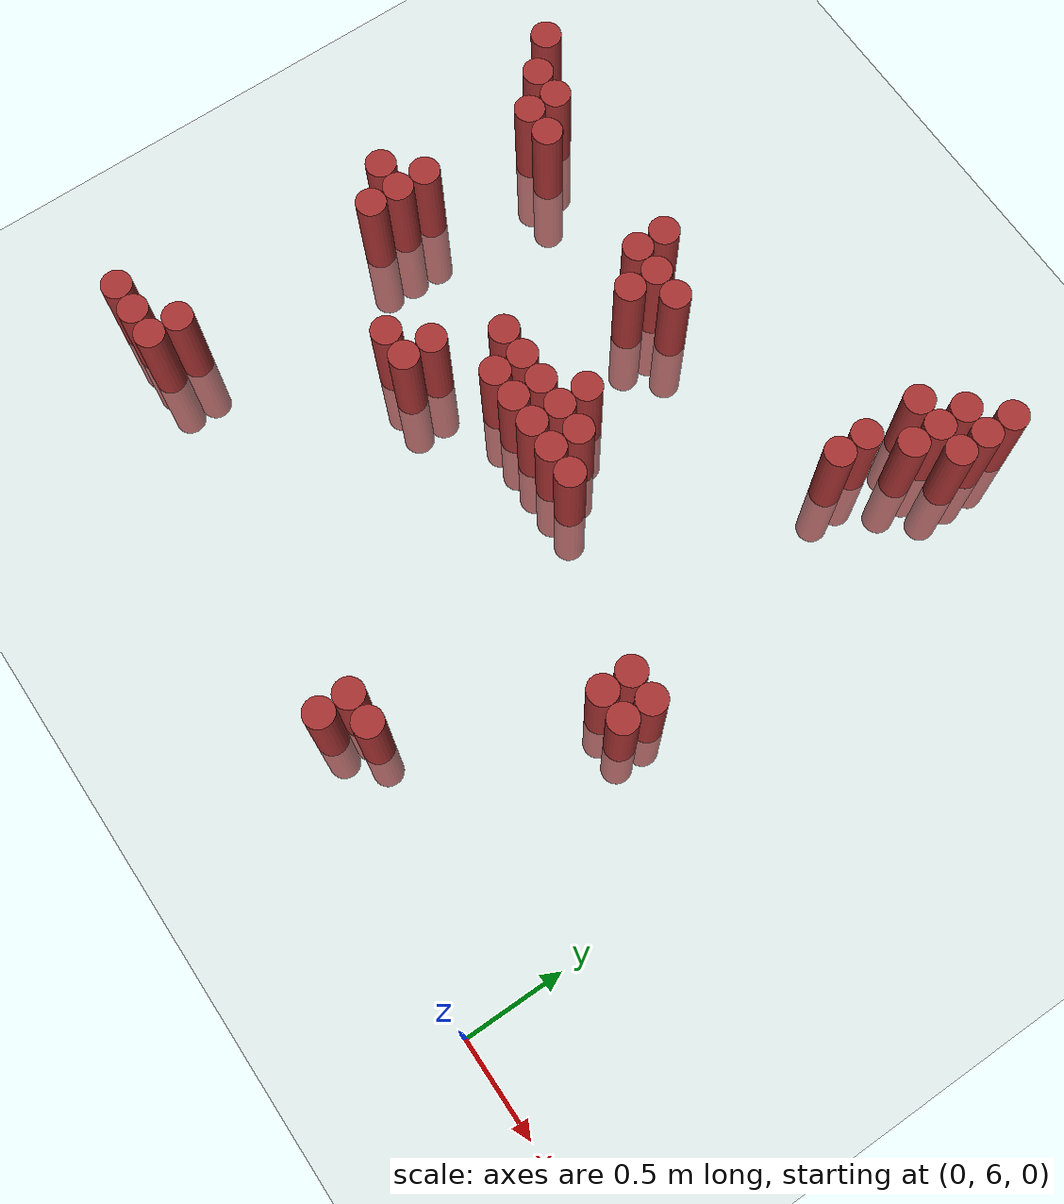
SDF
<sdf version="1.6">
 <world name="default">
  <model name="ground_plane">
   <static>1</static>
   <link name="link">
    <collision name="collision">
     <geometry><plane><normal>0 0 1</normal><size>100 100</size></plane></geometry>
     <surface><friction><ode><mu>100</mu><mu2>50</mu2></ode></friction></surface>
    </collision>
    <visual name="visual">
     <cast_shadows>0</cast_shadows>
     <geometry><plane><normal>0 0 1</normal><size>100 100</size></plane></geometry>
     <material>
      <script><uri>file://media/materials/scripts/gazebo.material</uri><name>Gazebo/Grey</name></script>
     </material>
    </visual>
   </link>
  </model>
  <model name="unit_cylinder_155">
   <static>1</static>
   <pose>-3.675000 6.525000 0.000000 0.000000 0.000000 0.000000</pose>
   <link name="link">
    <inertial>
     <mass>1</mass>
     <inertia><ixx>0.145833</ixx><ixy>0</ixy><ixz>0</ixz><iyy>0.145833</iyy><iyz>0</iyz><izz>0.125</izz></inertia>
    </inertial>
    <collision name="collision">
     <geometry><cylinder><radius>0.075000</radius><length>1</length></cylinder></geometry>
    </collision>
    <visual name="visual">
     <geometry><cylinder><radius>0.075000</radius><length>1</length></cylinder></geometry>
     <material>
      <ambient>0.648000 0.192000 0.192000 1</ambient>
      <diffuse>0.648000 0.192000 0.192000 1</diffuse>
     </material>
     <material>
      <script><name>Gazebo/Grey</name><uri>file://media/materials/scripts/gazebo.material</uri></script>
     </material>
    </visual>
   </link>
  </model>
  <model name="unit_cylinder_156">
   <static>1</static>
   <pose>-3.675000 8.925000 0.000000 0.000000 0.000000 0.000000</pose>
   <link name="link">
    <inertial>
     <mass>1</mass>
     <inertia><ixx>0.145833</ixx><ixy>0</ixy><ixz>0</ixz><iyy>0.145833</iyy><iyz>0</iyz><izz>0.125</izz></inertia>
    </inertial>
    <collision name="collision">
     <geometry><cylinder><radius>0.075000</radius><length>1</length></cylinder></geometry>
    </collision>
    <visual name="visual">
     <geometry><cylinder><radius>0.075000</radius><length>1</length></cylinder></geometry>
     <material>
      <ambient>0.648000 0.192000 0.192000 1</ambient>
      <diffuse>0.648000 0.192000 0.192000 1</diffuse>
     </material>
     <material>
      <script><name>Gazebo/Grey</name><uri>file://media/materials/scripts/gazebo.material</uri></script>
     </material>
    </visual>
   </link>
  </model>
  <model name="unit_cylinder_159">
   <static>1</static>
   <pose>-3.525000 6.525000 0.000000 0.000000 0.000000 0.000000</pose>
   <link name="link">
    <inertial>
     <mass>1</mass>
     <inertia><ixx>0.145833</ixx><ixy>0</ixy><ixz>0</ixz><iyy>0.145833</iyy><iyz>0</iyz><izz>0.125</izz></inertia>
    </inertial>
    <collision name="collision">
     <geometry><cylinder><radius>0.075000</radius><length>1</length></cylinder></geometry>
    </collision>
    <visual name="visual">
     <geometry><cylinder><radius>0.075000</radius><length>1</length></cylinder></geometry>
     <material>
      <ambient>0.648000 0.192000 0.192000 1</ambient>
      <diffuse>0.648000 0.192000 0.192000 1</diffuse>
     </material>
     <material>
      <script><name>Gazebo/Grey</name><uri>file://media/materials/scripts/gazebo.material</uri></script>
     </material>
    </visual>
   </link>
  </model>
  <model name="unit_cylinder_160">
   <static>1</static>
   <pose>-3.525000 7.875000 0.000000 0.000000 0.000000 0.000000</pose>
   <link name="link">
    <inertial>
     <mass>1</mass>
     <inertia><ixx>0.145833</ixx><ixy>0</ixy><ixz>0</ixz><iyy>0.145833</iyy><iyz>0</iyz><izz>0.125</izz></inertia>
    </inertial>
    <collision name="collision">
     <geometry><cylinder><radius>0.075000</radius><length>1</length></cylinder></geometry>
    </collision>
    <visual name="visual">
     <geometry><cylinder><radius>0.075000</radius><length>1</length></cylinder></geometry>
     <material>
      <ambient>0.648000 0.192000 0.192000 1</ambient>
      <diffuse>0.648000 0.192000 0.192000 1</diffuse>
     </material>
     <material>
      <script><name>Gazebo/Grey</name><uri>file://media/materials/scripts/gazebo.material</uri></script>
     </material>
    </visual>
   </link>
  </model>
  <model name="unit_cylinder_161">
   <static>1</static>
   <pose>-3.525000 8.775000 0.000000 0.000000 0.000000 0.000000</pose>
   <link name="link">
    <inertial>
     <mass>1</mass>
     <inertia><ixx>0.145833</ixx><ixy>0</ixy><ixz>0</ixz><iyy>0.145833</iyy><iyz>0</iyz><izz>0.125</izz></inertia>
    </inertial>
    <collision name="collision">
     <geometry><cylinder><radius>0.075000</radius><length>1</length></cylinder></geometry>
    </collision>
    <visual name="visual">
     <geometry><cylinder><radius>0.075000</radius><length>1</length></cylinder></geometry>
     <material>
      <ambient>0.648000 0.192000 0.192000 1</ambient>
      <diffuse>0.648000 0.192000 0.192000 1</diffuse>
     </material>
     <material>
      <script><name>Gazebo/Grey</name><uri>file://media/materials/scripts/gazebo.material</uri></script>
     </material>
    </visual>
   </link>
  </model>
  <model name="unit_cylinder_165">
   <static>1</static>
   <pose>-3.375000 6.525000 0.000000 0.000000 0.000000 0.000000</pose>
   <link name="link">
    <inertial>
     <mass>1</mass>
     <inertia><ixx>0.145833</ixx><ixy>0</ixy><ixz>0</ixz><iyy>0.145833</iyy><iyz>0</iyz><izz>0.125</izz></inertia>
    </inertial>
    <collision name="collision">
     <geometry><cylinder><radius>0.075000</radius><length>1</length></cylinder></geometry>
    </collision>
    <visual name="visual">
     <geometry><cylinder><radius>0.075000</radius><length>1</length></cylinder></geometry>
     <material>
      <ambient>0.648000 0.192000 0.192000 1</ambient>
      <diffuse>0.648000 0.192000 0.192000 1</diffuse>
     </material>
     <material>
      <script><name>Gazebo/Grey</name><uri>file://media/materials/scripts/gazebo.material</uri></script>
     </material>
    </visual>
   </link>
  </model>
  <model name="unit_cylinder_166">
   <static>1</static>
   <pose>-3.375000 6.675000 0.000000 0.000000 0.000000 0.000000</pose>
   <link name="link">
    <inertial>
     <mass>1</mass>
     <inertia><ixx>0.145833</ixx><ixy>0</ixy><ixz>0</ixz><iyy>0.145833</iyy><iyz>0</iyz><izz>0.125</izz></inertia>
    </inertial>
    <collision name="collision">
     <geometry><cylinder><radius>0.075000</radius><length>1</length></cylinder></geometry>
    </collision>
    <visual name="visual">
     <geometry><cylinder><radius>0.075000</radius><length>1</length></cylinder></geometry>
     <material>
      <ambient>0.648000 0.192000 0.192000 1</ambient>
      <diffuse>0.648000 0.192000 0.192000 1</diffuse>
     </material>
     <material>
      <script><name>Gazebo/Grey</name><uri>file://media/materials/scripts/gazebo.material</uri></script>
     </material>
    </visual>
   </link>
  </model>
  <model name="unit_cylinder_167">
   <static>1</static>
   <pose>-3.375000 7.725000 0.000000 0.000000 0.000000 0.000000</pose>
   <link name="link">
    <inertial>
     <mass>1</mass>
     <inertia><ixx>0.145833</ixx><ixy>0</ixy><ixz>0</ixz><iyy>0.145833</iyy><iyz>0</iyz><izz>0.125</izz></inertia>
    </inertial>
    <collision name="collision">
     <geometry><cylinder><radius>0.075000</radius><length>1</length></cylinder></geometry>
    </collision>
    <visual name="visual">
     <geometry><cylinder><radius>0.075000</radius><length>1</length></cylinder></geometry>
     <material>
      <ambient>0.648000 0.192000 0.192000 1</ambient>
      <diffuse>0.648000 0.192000 0.192000 1</diffuse>
     </material>
     <material>
      <script><name>Gazebo/Grey</name><uri>file://media/materials/scripts/gazebo.material</uri></script>
     </material>
    </visual>
   </link>
  </model>
  <model name="unit_cylinder_168">
   <static>1</static>
   <pose>-3.375000 7.875000 0.000000 0.000000 0.000000 0.000000</pose>
   <link name="link">
    <inertial>
     <mass>1</mass>
     <inertia><ixx>0.145833</ixx><ixy>0</ixy><ixz>0</ixz><iyy>0.145833</iyy><iyz>0</iyz><izz>0.125</izz></inertia>
    </inertial>
    <collision name="collision">
     <geometry><cylinder><radius>0.075000</radius><length>1</length></cylinder></geometry>
    </collision>
    <visual name="visual">
     <geometry><cylinder><radius>0.075000</radius><length>1</length></cylinder></geometry>
     <material>
      <ambient>0.648000 0.192000 0.192000 1</ambient>
      <diffuse>0.648000 0.192000 0.192000 1</diffuse>
     </material>
     <material>
      <script><name>Gazebo/Grey</name><uri>file://media/materials/scripts/gazebo.material</uri></script>
     </material>
    </visual>
   </link>
  </model>
  <model name="unit_cylinder_169">
   <static>1</static>
   <pose>-3.375000 8.025000 0.000000 0.000000 0.000000 0.000000</pose>
   <link name="link">
    <inertial>
     <mass>1</mass>
     <inertia><ixx>0.145833</ixx><ixy>0</ixy><ixz>0</ixz><iyy>0.145833</iyy><iyz>0</iyz><izz>0.125</izz></inertia>
    </inertial>
    <collision name="collision">
     <geometry><cylinder><radius>0.075000</radius><length>1</length></cylinder></geometry>
    </collision>
    <visual name="visual">
     <geometry><cylinder><radius>0.075000</radius><length>1</length></cylinder></geometry>
     <material>
      <ambient>0.648000 0.192000 0.192000 1</ambient>
      <diffuse>0.648000 0.192000 0.192000 1</diffuse>
     </material>
     <material>
      <script><name>Gazebo/Grey</name><uri>file://media/materials/scripts/gazebo.material</uri></script>
     </material>
    </visual>
   </link>
  </model>
  <model name="unit_cylinder_170">
   <static>1</static>
   <pose>-3.375000 8.625000 0.000000 0.000000 0.000000 0.000000</pose>
   <link name="link">
    <inertial>
     <mass>1</mass>
     <inertia><ixx>0.145833</ixx><ixy>0</ixy><ixz>0</ixz><iyy>0.145833</iyy><iyz>0</iyz><izz>0.125</izz></inertia>
    </inertial>
    <collision name="collision">
     <geometry><cylinder><radius>0.075000</radius><length>1</length></cylinder></geometry>
    </collision>
    <visual name="visual">
     <geometry><cylinder><radius>0.075000</radius><length>1</length></cylinder></geometry>
     <material>
      <ambient>0.648000 0.192000 0.192000 1</ambient>
      <diffuse>0.648000 0.192000 0.192000 1</diffuse>
     </material>
     <material>
      <script><name>Gazebo/Grey</name><uri>file://media/materials/scripts/gazebo.material</uri></script>
     </material>
    </visual>
   </link>
  </model>
  <model name="unit_cylinder_171">
   <static>1</static>
   <pose>-3.375000 8.775000 0.000000 0.000000 0.000000 0.000000</pose>
   <link name="link">
    <inertial>
     <mass>1</mass>
     <inertia><ixx>0.145833</ixx><ixy>0</ixy><ixz>0</ixz><iyy>0.145833</iyy><iyz>0</iyz><izz>0.125</izz></inertia>
    </inertial>
    <collision name="collision">
     <geometry><cylinder><radius>0.075000</radius><length>1</length></cylinder></geometry>
    </collision>
    <visual name="visual">
     <geometry><cylinder><radius>0.075000</radius><length>1</length></cylinder></geometry>
     <material>
      <ambient>0.648000 0.192000 0.192000 1</ambient>
      <diffuse>0.648000 0.192000 0.192000 1</diffuse>
     </material>
     <material>
      <script><name>Gazebo/Grey</name><uri>file://media/materials/scripts/gazebo.material</uri></script>
     </material>
    </visual>
   </link>
  </model>
  <model name="unit_cylinder_173">
   <static>1</static>
   <pose>-3.225000 8.625000 0.000000 0.000000 0.000000 0.000000</pose>
   <link name="link">
    <inertial>
     <mass>1</mass>
     <inertia><ixx>0.145833</ixx><ixy>0</ixy><ixz>0</ixz><iyy>0.145833</iyy><iyz>0</iyz><izz>0.125</izz></inertia>
    </inertial>
    <collision name="collision">
     <geometry><cylinder><radius>0.075000</radius><length>1</length></cylinder></geometry>
    </collision>
    <visual name="visual">
     <geometry><cylinder><radius>0.075000</radius><length>1</length></cylinder></geometry>
     <material>
      <ambient>0.648000 0.192000 0.192000 1</ambient>
      <diffuse>0.648000 0.192000 0.192000 1</diffuse>
     </material>
     <material>
      <script><name>Gazebo/Grey</name><uri>file://media/materials/scripts/gazebo.material</uri></script>
     </material>
    </visual>
   </link>
  </model>
  <model name="unit_cylinder_174">
   <static>1</static>
   <pose>-2.775000 7.425000 0.000000 0.000000 0.000000 0.000000</pose>
   <link name="link">
    <inertial>
     <mass>1</mass>
     <inertia><ixx>0.145833</ixx><ixy>0</ixy><ixz>0</ixz><iyy>0.145833</iyy><iyz>0</iyz><izz>0.125</izz></inertia>
    </inertial>
    <collision name="collision">
     <geometry><cylinder><radius>0.075000</radius><length>1</length></cylinder></geometry>
    </collision>
    <visual name="visual">
     <geometry><cylinder><radius>0.075000</radius><length>1</length></cylinder></geometry>
     <material>
      <ambient>0.648000 0.192000 0.192000 1</ambient>
      <diffuse>0.648000 0.192000 0.192000 1</diffuse>
     </material>
     <material>
      <script><name>Gazebo/Grey</name><uri>file://media/materials/scripts/gazebo.material</uri></script>
     </material>
    </visual>
   </link>
  </model>
  <model name="unit_cylinder_175">
   <static>1</static>
   <pose>-2.625000 7.425000 0.000000 0.000000 0.000000 0.000000</pose>
   <link name="link">
    <inertial>
     <mass>1</mass>
     <inertia><ixx>0.145833</ixx><ixy>0</ixy><ixz>0</ixz><iyy>0.145833</iyy><iyz>0</iyz><izz>0.125</izz></inertia>
    </inertial>
    <collision name="collision">
     <geometry><cylinder><radius>0.075000</radius><length>1</length></cylinder></geometry>
    </collision>
    <visual name="visual">
     <geometry><cylinder><radius>0.075000</radius><length>1</length></cylinder></geometry>
     <material>
      <ambient>0.648000 0.192000 0.192000 1</ambient>
      <diffuse>0.648000 0.192000 0.192000 1</diffuse>
     </material>
     <material>
      <script><name>Gazebo/Grey</name><uri>file://media/materials/scripts/gazebo.material</uri></script>
     </material>
    </visual>
   </link>
  </model>
  <model name="unit_cylinder_176">
   <static>1</static>
   <pose>-2.625000 7.575000 0.000000 0.000000 0.000000 0.000000</pose>
   <link name="link">
    <inertial>
     <mass>1</mass>
     <inertia><ixx>0.145833</ixx><ixy>0</ixy><ixz>0</ixz><iyy>0.145833</iyy><iyz>0</iyz><izz>0.125</izz></inertia>
    </inertial>
    <collision name="collision">
     <geometry><cylinder><radius>0.075000</radius><length>1</length></cylinder></geometry>
    </collision>
    <visual name="visual">
     <geometry><cylinder><radius>0.075000</radius><length>1</length></cylinder></geometry>
     <material>
      <ambient>0.648000 0.192000 0.192000 1</ambient>
      <diffuse>0.648000 0.192000 0.192000 1</diffuse>
     </material>
     <material>
      <script><name>Gazebo/Grey</name><uri>file://media/materials/scripts/gazebo.material</uri></script>
     </material>
    </visual>
   </link>
  </model>
  <model name="unit_cylinder_177">
   <static>1</static>
   <pose>-2.475000 7.875000 0.000000 0.000000 0.000000 0.000000</pose>
   <link name="link">
    <inertial>
     <mass>1</mass>
     <inertia><ixx>0.145833</ixx><ixy>0</ixy><ixz>0</ixz><iyy>0.145833</iyy><iyz>0</iyz><izz>0.125</izz></inertia>
    </inertial>
    <collision name="collision">
     <geometry><cylinder><radius>0.075000</radius><length>1</length></cylinder></geometry>
    </collision>
    <visual name="visual">
     <geometry><cylinder><radius>0.075000</radius><length>1</length></cylinder></geometry>
     <material>
      <ambient>0.648000 0.192000 0.192000 1</ambient>
      <diffuse>0.648000 0.192000 0.192000 1</diffuse>
     </material>
     <material>
      <script><name>Gazebo/Grey</name><uri>file://media/materials/scripts/gazebo.material</uri></script>
     </material>
    </visual>
   </link>
  </model>
  <model name="unit_cylinder_178">
   <static>1</static>
   <pose>-2.475000 8.625000 0.000000 0.000000 0.000000 0.000000</pose>
   <link name="link">
    <inertial>
     <mass>1</mass>
     <inertia><ixx>0.145833</ixx><ixy>0</ixy><ixz>0</ixz><iyy>0.145833</iyy><iyz>0</iyz><izz>0.125</izz></inertia>
    </inertial>
    <collision name="collision">
     <geometry><cylinder><radius>0.075000</radius><length>1</length></cylinder></geometry>
    </collision>
    <visual name="visual">
     <geometry><cylinder><radius>0.075000</radius><length>1</length></cylinder></geometry>
     <material>
      <ambient>0.648000 0.192000 0.192000 1</ambient>
      <diffuse>0.648000 0.192000 0.192000 1</diffuse>
     </material>
     <material>
      <script><name>Gazebo/Grey</name><uri>file://media/materials/scripts/gazebo.material</uri></script>
     </material>
    </visual>
   </link>
  </model>
  <model name="unit_cylinder_179">
   <static>1</static>
   <pose>-2.475000 8.775000 0.000000 0.000000 0.000000 0.000000</pose>
   <link name="link">
    <inertial>
     <mass>1</mass>
     <inertia><ixx>0.145833</ixx><ixy>0</ixy><ixz>0</ixz><iyy>0.145833</iyy><iyz>0</iyz><izz>0.125</izz></inertia>
    </inertial>
    <collision name="collision">
     <geometry><cylinder><radius>0.075000</radius><length>1</length></cylinder></geometry>
    </collision>
    <visual name="visual">
     <geometry><cylinder><radius>0.075000</radius><length>1</length></cylinder></geometry>
     <material>
      <ambient>0.648000 0.192000 0.192000 1</ambient>
      <diffuse>0.648000 0.192000 0.192000 1</diffuse>
     </material>
     <material>
      <script><name>Gazebo/Grey</name><uri>file://media/materials/scripts/gazebo.material</uri></script>
     </material>
    </visual>
   </link>
  </model>
  <model name="unit_cylinder_180">
   <static>1</static>
   <pose>-2.325000 7.725000 0.000000 0.000000 0.000000 0.000000</pose>
   <link name="link">
    <inertial>
     <mass>1</mass>
     <inertia><ixx>0.145833</ixx><ixy>0</ixy><ixz>0</ixz><iyy>0.145833</iyy><iyz>0</iyz><izz>0.125</izz></inertia>
    </inertial>
    <collision name="collision">
     <geometry><cylinder><radius>0.075000</radius><length>1</length></cylinder></geometry>
    </collision>
    <visual name="visual">
     <geometry><cylinder><radius>0.075000</radius><length>1</length></cylinder></geometry>
     <material>
      <ambient>0.648000 0.192000 0.192000 1</ambient>
      <diffuse>0.648000 0.192000 0.192000 1</diffuse>
     </material>
     <material>
      <script><name>Gazebo/Grey</name><uri>file://media/materials/scripts/gazebo.material</uri></script>
     </material>
    </visual>
   </link>
  </model>
  <model name="unit_cylinder_181">
   <static>1</static>
   <pose>-2.325000 7.875000 0.000000 0.000000 0.000000 0.000000</pose>
   <link name="link">
    <inertial>
     <mass>1</mass>
     <inertia><ixx>0.145833</ixx><ixy>0</ixy><ixz>0</ixz><iyy>0.145833</iyy><iyz>0</iyz><izz>0.125</izz></inertia>
    </inertial>
    <collision name="collision">
     <geometry><cylinder><radius>0.075000</radius><length>1</length></cylinder></geometry>
    </collision>
    <visual name="visual">
     <geometry><cylinder><radius>0.075000</radius><length>1</length></cylinder></geometry>
     <material>
      <ambient>0.648000 0.192000 0.192000 1</ambient>
      <diffuse>0.648000 0.192000 0.192000 1</diffuse>
     </material>
     <material>
      <script><name>Gazebo/Grey</name><uri>file://media/materials/scripts/gazebo.material</uri></script>
     </material>
    </visual>
   </link>
  </model>
  <model name="unit_cylinder_182">
   <static>1</static>
   <pose>-2.325000 8.475000 0.000000 0.000000 0.000000 0.000000</pose>
   <link name="link">
    <inertial>
     <mass>1</mass>
     <inertia><ixx>0.145833</ixx><ixy>0</ixy><ixz>0</ixz><iyy>0.145833</iyy><iyz>0</iyz><izz>0.125</izz></inertia>
    </inertial>
    <collision name="collision">
     <geometry><cylinder><radius>0.075000</radius><length>1</length></cylinder></geometry>
    </collision>
    <visual name="visual">
     <geometry><cylinder><radius>0.075000</radius><length>1</length></cylinder></geometry>
     <material>
      <ambient>0.648000 0.192000 0.192000 1</ambient>
      <diffuse>0.648000 0.192000 0.192000 1</diffuse>
     </material>
     <material>
      <script><name>Gazebo/Grey</name><uri>file://media/materials/scripts/gazebo.material</uri></script>
     </material>
    </visual>
   </link>
  </model>
  <model name="unit_cylinder_183">
   <static>1</static>
   <pose>-2.325000 8.625000 0.000000 0.000000 0.000000 0.000000</pose>
   <link name="link">
    <inertial>
     <mass>1</mass>
     <inertia><ixx>0.145833</ixx><ixy>0</ixy><ixz>0</ixz><iyy>0.145833</iyy><iyz>0</iyz><izz>0.125</izz></inertia>
    </inertial>
    <collision name="collision">
     <geometry><cylinder><radius>0.075000</radius><length>1</length></cylinder></geometry>
    </collision>
    <visual name="visual">
     <geometry><cylinder><radius>0.075000</radius><length>1</length></cylinder></geometry>
     <material>
      <ambient>0.648000 0.192000 0.192000 1</ambient>
      <diffuse>0.648000 0.192000 0.192000 1</diffuse>
     </material>
     <material>
      <script><name>Gazebo/Grey</name><uri>file://media/materials/scripts/gazebo.material</uri></script>
     </material>
    </visual>
   </link>
  </model>
  <model name="unit_cylinder_186">
   <static>1</static>
   <pose>-2.175000 7.725000 0.000000 0.000000 0.000000 0.000000</pose>
   <link name="link">
    <inertial>
     <mass>1</mass>
     <inertia><ixx>0.145833</ixx><ixy>0</ixy><ixz>0</ixz><iyy>0.145833</iyy><iyz>0</iyz><izz>0.125</izz></inertia>
    </inertial>
    <collision name="collision">
     <geometry><cylinder><radius>0.075000</radius><length>1</length></cylinder></geometry>
    </collision>
    <visual name="visual">
     <geometry><cylinder><radius>0.075000</radius><length>1</length></cylinder></geometry>
     <material>
      <ambient>0.648000 0.192000 0.192000 1</ambient>
      <diffuse>0.648000 0.192000 0.192000 1</diffuse>
     </material>
     <material>
      <script><name>Gazebo/Grey</name><uri>file://media/materials/scripts/gazebo.material</uri></script>
     </material>
    </visual>
   </link>
  </model>
  <model name="unit_cylinder_187">
   <static>1</static>
   <pose>-2.175000 7.875000 0.000000 0.000000 0.000000 0.000000</pose>
   <link name="link">
    <inertial>
     <mass>1</mass>
     <inertia><ixx>0.145833</ixx><ixy>0</ixy><ixz>0</ixz><iyy>0.145833</iyy><iyz>0</iyz><izz>0.125</izz></inertia>
    </inertial>
    <collision name="collision">
     <geometry><cylinder><radius>0.075000</radius><length>1</length></cylinder></geometry>
    </collision>
    <visual name="visual">
     <geometry><cylinder><radius>0.075000</radius><length>1</length></cylinder></geometry>
     <material>
      <ambient>0.648000 0.192000 0.192000 1</ambient>
      <diffuse>0.648000 0.192000 0.192000 1</diffuse>
     </material>
     <material>
      <script><name>Gazebo/Grey</name><uri>file://media/materials/scripts/gazebo.material</uri></script>
     </material>
    </visual>
   </link>
  </model>
  <model name="unit_cylinder_188">
   <static>1</static>
   <pose>-2.175000 8.625000 0.000000 0.000000 0.000000 0.000000</pose>
   <link name="link">
    <inertial>
     <mass>1</mass>
     <inertia><ixx>0.145833</ixx><ixy>0</ixy><ixz>0</ixz><iyy>0.145833</iyy><iyz>0</iyz><izz>0.125</izz></inertia>
    </inertial>
    <collision name="collision">
     <geometry><cylinder><radius>0.075000</radius><length>1</length></cylinder></geometry>
    </collision>
    <visual name="visual">
     <geometry><cylinder><radius>0.075000</radius><length>1</length></cylinder></geometry>
     <material>
      <ambient>0.648000 0.192000 0.192000 1</ambient>
      <diffuse>0.648000 0.192000 0.192000 1</diffuse>
     </material>
     <material>
      <script><name>Gazebo/Grey</name><uri>file://media/materials/scripts/gazebo.material</uri></script>
     </material>
    </visual>
   </link>
  </model>
  <model name="unit_cylinder_191">
   <static>1</static>
   <pose>-2.025000 7.725000 0.000000 0.000000 0.000000 0.000000</pose>
   <link name="link">
    <inertial>
     <mass>1</mass>
     <inertia><ixx>0.145833</ixx><ixy>0</ixy><ixz>0</ixz><iyy>0.145833</iyy><iyz>0</iyz><izz>0.125</izz></inertia>
    </inertial>
    <collision name="collision">
     <geometry><cylinder><radius>0.075000</radius><length>1</length></cylinder></geometry>
    </collision>
    <visual name="visual">
     <geometry><cylinder><radius>0.075000</radius><length>1</length></cylinder></geometry>
     <material>
      <ambient>0.648000 0.192000 0.192000 1</ambient>
      <diffuse>0.648000 0.192000 0.192000 1</diffuse>
     </material>
     <material>
      <script><name>Gazebo/Grey</name><uri>file://media/materials/scripts/gazebo.material</uri></script>
     </material>
    </visual>
   </link>
  </model>
  <model name="unit_cylinder_192">
   <static>1</static>
   <pose>-2.025000 7.875000 0.000000 0.000000 0.000000 0.000000</pose>
   <link name="link">
    <inertial>
     <mass>1</mass>
     <inertia><ixx>0.145833</ixx><ixy>0</ixy><ixz>0</ixz><iyy>0.145833</iyy><iyz>0</iyz><izz>0.125</izz></inertia>
    </inertial>
    <collision name="collision">
     <geometry><cylinder><radius>0.075000</radius><length>1</length></cylinder></geometry>
    </collision>
    <visual name="visual">
     <geometry><cylinder><radius>0.075000</radius><length>1</length></cylinder></geometry>
     <material>
      <ambient>0.648000 0.192000 0.192000 1</ambient>
      <diffuse>0.648000 0.192000 0.192000 1</diffuse>
     </material>
     <material>
      <script><name>Gazebo/Grey</name><uri>file://media/materials/scripts/gazebo.material</uri></script>
     </material>
    </visual>
   </link>
  </model>
  <model name="unit_cylinder_193">
   <static>1</static>
   <pose>-2.025000 8.025000 0.000000 0.000000 0.000000 0.000000</pose>
   <link name="link">
    <inertial>
     <mass>1</mass>
     <inertia><ixx>0.145833</ixx><ixy>0</ixy><ixz>0</ixz><iyy>0.145833</iyy><iyz>0</iyz><izz>0.125</izz></inertia>
    </inertial>
    <collision name="collision">
     <geometry><cylinder><radius>0.075000</radius><length>1</length></cylinder></geometry>
    </collision>
    <visual name="visual">
     <geometry><cylinder><radius>0.075000</radius><length>1</length></cylinder></geometry>
     <material>
      <ambient>0.648000 0.192000 0.192000 1</ambient>
      <diffuse>0.648000 0.192000 0.192000 1</diffuse>
     </material>
     <material>
      <script><name>Gazebo/Grey</name><uri>file://media/materials/scripts/gazebo.material</uri></script>
     </material>
    </visual>
   </link>
  </model>
  <model name="unit_cylinder_196">
   <static>1</static>
   <pose>-1.875000 7.725000 0.000000 0.000000 0.000000 0.000000</pose>
   <link name="link">
    <inertial>
     <mass>1</mass>
     <inertia><ixx>0.145833</ixx><ixy>0</ixy><ixz>0</ixz><iyy>0.145833</iyy><iyz>0</iyz><izz>0.125</izz></inertia>
    </inertial>
    <collision name="collision">
     <geometry><cylinder><radius>0.075000</radius><length>1</length></cylinder></geometry>
    </collision>
    <visual name="visual">
     <geometry><cylinder><radius>0.075000</radius><length>1</length></cylinder></geometry>
     <material>
      <ambient>0.648000 0.192000 0.192000 1</ambient>
      <diffuse>0.648000 0.192000 0.192000 1</diffuse>
     </material>
     <material>
      <script><name>Gazebo/Grey</name><uri>file://media/materials/scripts/gazebo.material</uri></script>
     </material>
    </visual>
   </link>
  </model>
  <model name="unit_cylinder_197">
   <static>1</static>
   <pose>-1.875000 7.875000 0.000000 0.000000 0.000000 0.000000</pose>
   <link name="link">
    <inertial>
     <mass>1</mass>
     <inertia><ixx>0.145833</ixx><ixy>0</ixy><ixz>0</ixz><iyy>0.145833</iyy><iyz>0</iyz><izz>0.125</izz></inertia>
    </inertial>
    <collision name="collision">
     <geometry><cylinder><radius>0.075000</radius><length>1</length></cylinder></geometry>
    </collision>
    <visual name="visual">
     <geometry><cylinder><radius>0.075000</radius><length>1</length></cylinder></geometry>
     <material>
      <ambient>0.648000 0.192000 0.192000 1</ambient>
      <diffuse>0.648000 0.192000 0.192000 1</diffuse>
     </material>
     <material>
      <script><name>Gazebo/Grey</name><uri>file://media/materials/scripts/gazebo.material</uri></script>
     </material>
    </visual>
   </link>
  </model>
  <model name="unit_cylinder_201">
   <static>1</static>
   <pose>-1.725000 7.725000 0.000000 0.000000 0.000000 0.000000</pose>
   <link name="link">
    <inertial>
     <mass>1</mass>
     <inertia><ixx>0.145833</ixx><ixy>0</ixy><ixz>0</ixz><iyy>0.145833</iyy><iyz>0</iyz><izz>0.125</izz></inertia>
    </inertial>
    <collision name="collision">
     <geometry><cylinder><radius>0.075000</radius><length>1</length></cylinder></geometry>
    </collision>
    <visual name="visual">
     <geometry><cylinder><radius>0.075000</radius><length>1</length></cylinder></geometry>
     <material>
      <ambient>0.648000 0.192000 0.192000 1</ambient>
      <diffuse>0.648000 0.192000 0.192000 1</diffuse>
     </material>
     <material>
      <script><name>Gazebo/Grey</name><uri>file://media/materials/scripts/gazebo.material</uri></script>
     </material>
    </visual>
   </link>
  </model>
  <model name="unit_cylinder_206">
   <static>1</static>
   <pose>-1.425000 6.225000 0.000000 0.000000 0.000000 0.000000</pose>
   <link name="link">
    <inertial>
     <mass>1</mass>
     <inertia><ixx>0.145833</ixx><ixy>0</ixy><ixz>0</ixz><iyy>0.145833</iyy><iyz>0</iyz><izz>0.125</izz></inertia>
    </inertial>
    <collision name="collision">
     <geometry><cylinder><radius>0.075000</radius><length>1</length></cylinder></geometry>
    </collision>
    <visual name="visual">
     <geometry><cylinder><radius>0.075000</radius><length>1</length></cylinder></geometry>
     <material>
      <ambient>0.648000 0.192000 0.192000 1</ambient>
      <diffuse>0.648000 0.192000 0.192000 1</diffuse>
     </material>
     <material>
      <script><name>Gazebo/Grey</name><uri>file://media/materials/scripts/gazebo.material</uri></script>
     </material>
    </visual>
   </link>
  </model>
  <model name="unit_cylinder_207">
   <static>1</static>
   <pose>-1.425000 6.375000 0.000000 0.000000 0.000000 0.000000</pose>
   <link name="link">
    <inertial>
     <mass>1</mass>
     <inertia><ixx>0.145833</ixx><ixy>0</ixy><ixz>0</ixz><iyy>0.145833</iyy><iyz>0</iyz><izz>0.125</izz></inertia>
    </inertial>
    <collision name="collision">
     <geometry><cylinder><radius>0.075000</radius><length>1</length></cylinder></geometry>
    </collision>
    <visual name="visual">
     <geometry><cylinder><radius>0.075000</radius><length>1</length></cylinder></geometry>
     <material>
      <ambient>0.648000 0.192000 0.192000 1</ambient>
      <diffuse>0.648000 0.192000 0.192000 1</diffuse>
     </material>
     <material>
      <script><name>Gazebo/Grey</name><uri>file://media/materials/scripts/gazebo.material</uri></script>
     </material>
    </visual>
   </link>
  </model>
  <model name="unit_cylinder_208">
   <static>1</static>
   <pose>-1.275000 6.375000 0.000000 0.000000 0.000000 0.000000</pose>
   <link name="link">
    <inertial>
     <mass>1</mass>
     <inertia><ixx>0.145833</ixx><ixy>0</ixy><ixz>0</ixz><iyy>0.145833</iyy><iyz>0</iyz><izz>0.125</izz></inertia>
    </inertial>
    <collision name="collision">
     <geometry><cylinder><radius>0.075000</radius><length>1</length></cylinder></geometry>
    </collision>
    <visual name="visual">
     <geometry><cylinder><radius>0.075000</radius><length>1</length></cylinder></geometry>
     <material>
      <ambient>0.648000 0.192000 0.192000 1</ambient>
      <diffuse>0.648000 0.192000 0.192000 1</diffuse>
     </material>
     <material>
      <script><name>Gazebo/Grey</name><uri>file://media/materials/scripts/gazebo.material</uri></script>
     </material>
    </visual>
   </link>
  </model>
  <model name="unit_cylinder_209">
   <static>1</static>
   <pose>-1.125000 8.775000 0.000000 0.000000 0.000000 0.000000</pose>
   <link name="link">
    <inertial>
     <mass>1</mass>
     <inertia><ixx>0.145833</ixx><ixy>0</ixy><ixz>0</ixz><iyy>0.145833</iyy><iyz>0</iyz><izz>0.125</izz></inertia>
    </inertial>
    <collision name="collision">
     <geometry><cylinder><radius>0.075000</radius><length>1</length></cylinder></geometry>
    </collision>
    <visual name="visual">
     <geometry><cylinder><radius>0.075000</radius><length>1</length></cylinder></geometry>
     <material>
      <ambient>0.648000 0.192000 0.192000 1</ambient>
      <diffuse>0.648000 0.192000 0.192000 1</diffuse>
     </material>
     <material>
      <script><name>Gazebo/Grey</name><uri>file://media/materials/scripts/gazebo.material</uri></script>
     </material>
    </visual>
   </link>
  </model>
  <model name="unit_cylinder_210">
   <static>1</static>
   <pose>-1.125000 8.925000 0.000000 0.000000 0.000000 0.000000</pose>
   <link name="link">
    <inertial>
     <mass>1</mass>
     <inertia><ixx>0.145833</ixx><ixy>0</ixy><ixz>0</ixz><iyy>0.145833</iyy><iyz>0</iyz><izz>0.125</izz></inertia>
    </inertial>
    <collision name="collision">
     <geometry><cylinder><radius>0.075000</radius><length>1</length></cylinder></geometry>
    </collision>
    <visual name="visual">
     <geometry><cylinder><radius>0.075000</radius><length>1</length></cylinder></geometry>
     <material>
      <ambient>0.648000 0.192000 0.192000 1</ambient>
      <diffuse>0.648000 0.192000 0.192000 1</diffuse>
     </material>
     <material>
      <script><name>Gazebo/Grey</name><uri>file://media/materials/scripts/gazebo.material</uri></script>
     </material>
    </visual>
   </link>
  </model>
  <model name="unit_cylinder_211">
   <static>1</static>
   <pose>-1.125000 9.225000 0.000000 0.000000 0.000000 0.000000</pose>
   <link name="link">
    <inertial>
     <mass>1</mass>
     <inertia><ixx>0.145833</ixx><ixy>0</ixy><ixz>0</ixz><iyy>0.145833</iyy><iyz>0</iyz><izz>0.125</izz></inertia>
    </inertial>
    <collision name="collision">
     <geometry><cylinder><radius>0.075000</radius><length>1</length></cylinder></geometry>
    </collision>
    <visual name="visual">
     <geometry><cylinder><radius>0.075000</radius><length>1</length></cylinder></geometry>
     <material>
      <ambient>0.648000 0.192000 0.192000 1</ambient>
      <diffuse>0.648000 0.192000 0.192000 1</diffuse>
     </material>
     <material>
      <script><name>Gazebo/Grey</name><uri>file://media/materials/scripts/gazebo.material</uri></script>
     </material>
    </visual>
   </link>
  </model>
  <model name="unit_cylinder_212">
   <static>1</static>
   <pose>-0.975000 9.075000 0.000000 0.000000 0.000000 0.000000</pose>
   <link name="link">
    <inertial>
     <mass>1</mass>
     <inertia><ixx>0.145833</ixx><ixy>0</ixy><ixz>0</ixz><iyy>0.145833</iyy><iyz>0</iyz><izz>0.125</izz></inertia>
    </inertial>
    <collision name="collision">
     <geometry><cylinder><radius>0.075000</radius><length>1</length></cylinder></geometry>
    </collision>
    <visual name="visual">
     <geometry><cylinder><radius>0.075000</radius><length>1</length></cylinder></geometry>
     <material>
      <ambient>0.648000 0.192000 0.192000 1</ambient>
      <diffuse>0.648000 0.192000 0.192000 1</diffuse>
     </material>
     <material>
      <script><name>Gazebo/Grey</name><uri>file://media/materials/scripts/gazebo.material</uri></script>
     </material>
    </visual>
   </link>
  </model>
  <model name="unit_cylinder_213">
   <static>1</static>
   <pose>-0.975000 9.225000 0.000000 0.000000 0.000000 0.000000</pose>
   <link name="link">
    <inertial>
     <mass>1</mass>
     <inertia><ixx>0.145833</ixx><ixy>0</ixy><ixz>0</ixz><iyy>0.145833</iyy><iyz>0</iyz><izz>0.125</izz></inertia>
    </inertial>
    <collision name="collision">
     <geometry><cylinder><radius>0.075000</radius><length>1</length></cylinder></geometry>
    </collision>
    <visual name="visual">
     <geometry><cylinder><radius>0.075000</radius><length>1</length></cylinder></geometry>
     <material>
      <ambient>0.648000 0.192000 0.192000 1</ambient>
      <diffuse>0.648000 0.192000 0.192000 1</diffuse>
     </material>
     <material>
      <script><name>Gazebo/Grey</name><uri>file://media/materials/scripts/gazebo.material</uri></script>
     </material>
    </visual>
   </link>
  </model>
  <model name="unit_cylinder_214">
   <static>1</static>
   <pose>-0.975000 9.375000 0.000000 0.000000 0.000000 0.000000</pose>
   <link name="link">
    <inertial>
     <mass>1</mass>
     <inertia><ixx>0.145833</ixx><ixy>0</ixy><ixz>0</ixz><iyy>0.145833</iyy><iyz>0</iyz><izz>0.125</izz></inertia>
    </inertial>
    <collision name="collision">
     <geometry><cylinder><radius>0.075000</radius><length>1</length></cylinder></geometry>
    </collision>
    <visual name="visual">
     <geometry><cylinder><radius>0.075000</radius><length>1</length></cylinder></geometry>
     <material>
      <ambient>0.648000 0.192000 0.192000 1</ambient>
      <diffuse>0.648000 0.192000 0.192000 1</diffuse>
     </material>
     <material>
      <script><name>Gazebo/Grey</name><uri>file://media/materials/scripts/gazebo.material</uri></script>
     </material>
    </visual>
   </link>
  </model>
  <model name="unit_cylinder_215">
   <static>1</static>
   <pose>-0.825000 7.275000 0.000000 0.000000 0.000000 0.000000</pose>
   <link name="link">
    <inertial>
     <mass>1</mass>
     <inertia><ixx>0.145833</ixx><ixy>0</ixy><ixz>0</ixz><iyy>0.145833</iyy><iyz>0</iyz><izz>0.125</izz></inertia>
    </inertial>
    <collision name="collision">
     <geometry><cylinder><radius>0.075000</radius><length>1</length></cylinder></geometry>
    </collision>
    <visual name="visual">
     <geometry><cylinder><radius>0.075000</radius><length>1</length></cylinder></geometry>
     <material>
      <ambient>0.648000 0.192000 0.192000 1</ambient>
      <diffuse>0.648000 0.192000 0.192000 1</diffuse>
     </material>
     <material>
      <script><name>Gazebo/Grey</name><uri>file://media/materials/scripts/gazebo.material</uri></script>
     </material>
    </visual>
   </link>
  </model>
  <model name="unit_cylinder_216">
   <static>1</static>
   <pose>-0.825000 7.425000 0.000000 0.000000 0.000000 0.000000</pose>
   <link name="link">
    <inertial>
     <mass>1</mass>
     <inertia><ixx>0.145833</ixx><ixy>0</ixy><ixz>0</ixz><iyy>0.145833</iyy><iyz>0</iyz><izz>0.125</izz></inertia>
    </inertial>
    <collision name="collision">
     <geometry><cylinder><radius>0.075000</radius><length>1</length></cylinder></geometry>
    </collision>
    <visual name="visual">
     <geometry><cylinder><radius>0.075000</radius><length>1</length></cylinder></geometry>
     <material>
      <ambient>0.648000 0.192000 0.192000 1</ambient>
      <diffuse>0.648000 0.192000 0.192000 1</diffuse>
     </material>
     <material>
      <script><name>Gazebo/Grey</name><uri>file://media/materials/scripts/gazebo.material</uri></script>
     </material>
    </visual>
   </link>
  </model>
  <model name="unit_cylinder_217">
   <static>1</static>
   <pose>-0.825000 9.225000 0.000000 0.000000 0.000000 0.000000</pose>
   <link name="link">
    <inertial>
     <mass>1</mass>
     <inertia><ixx>0.145833</ixx><ixy>0</ixy><ixz>0</ixz><iyy>0.145833</iyy><iyz>0</iyz><izz>0.125</izz></inertia>
    </inertial>
    <collision name="collision">
     <geometry><cylinder><radius>0.075000</radius><length>1</length></cylinder></geometry>
    </collision>
    <visual name="visual">
     <geometry><cylinder><radius>0.075000</radius><length>1</length></cylinder></geometry>
     <material>
      <ambient>0.648000 0.192000 0.192000 1</ambient>
      <diffuse>0.648000 0.192000 0.192000 1</diffuse>
     </material>
     <material>
      <script><name>Gazebo/Grey</name><uri>file://media/materials/scripts/gazebo.material</uri></script>
     </material>
    </visual>
   </link>
  </model>
  <model name="unit_cylinder_218">
   <static>1</static>
   <pose>-0.825000 9.375000 0.000000 0.000000 0.000000 0.000000</pose>
   <link name="link">
    <inertial>
     <mass>1</mass>
     <inertia><ixx>0.145833</ixx><ixy>0</ixy><ixz>0</ixz><iyy>0.145833</iyy><iyz>0</iyz><izz>0.125</izz></inertia>
    </inertial>
    <collision name="collision">
     <geometry><cylinder><radius>0.075000</radius><length>1</length></cylinder></geometry>
    </collision>
    <visual name="visual">
     <geometry><cylinder><radius>0.075000</radius><length>1</length></cylinder></geometry>
     <material>
      <ambient>0.648000 0.192000 0.192000 1</ambient>
      <diffuse>0.648000 0.192000 0.192000 1</diffuse>
     </material>
     <material>
      <script><name>Gazebo/Grey</name><uri>file://media/materials/scripts/gazebo.material</uri></script>
     </material>
    </visual>
   </link>
  </model>
  <model name="unit_cylinder_219">
   <static>1</static>
   <pose>-0.825000 9.525000 0.000000 0.000000 0.000000 0.000000</pose>
   <link name="link">
    <inertial>
     <mass>1</mass>
     <inertia><ixx>0.145833</ixx><ixy>0</ixy><ixz>0</ixz><iyy>0.145833</iyy><iyz>0</iyz><izz>0.125</izz></inertia>
    </inertial>
    <collision name="collision">
     <geometry><cylinder><radius>0.075000</radius><length>1</length></cylinder></geometry>
    </collision>
    <visual name="visual">
     <geometry><cylinder><radius>0.075000</radius><length>1</length></cylinder></geometry>
     <material>
      <ambient>0.648000 0.192000 0.192000 1</ambient>
      <diffuse>0.648000 0.192000 0.192000 1</diffuse>
     </material>
     <material>
      <script><name>Gazebo/Grey</name><uri>file://media/materials/scripts/gazebo.material</uri></script>
     </material>
    </visual>
   </link>
  </model>
  <model name="unit_cylinder_222">
   <static>1</static>
   <pose>-0.675000 7.275000 0.000000 0.000000 0.000000 0.000000</pose>
   <link name="link">
    <inertial>
     <mass>1</mass>
     <inertia><ixx>0.145833</ixx><ixy>0</ixy><ixz>0</ixz><iyy>0.145833</iyy><iyz>0</iyz><izz>0.125</izz></inertia>
    </inertial>
    <collision name="collision">
     <geometry><cylinder><radius>0.075000</radius><length>1</length></cylinder></geometry>
    </collision>
    <visual name="visual">
     <geometry><cylinder><radius>0.075000</radius><length>1</length></cylinder></geometry>
     <material>
      <ambient>0.648000 0.192000 0.192000 1</ambient>
      <diffuse>0.648000 0.192000 0.192000 1</diffuse>
     </material>
     <material>
      <script><name>Gazebo/Grey</name><uri>file://media/materials/scripts/gazebo.material</uri></script>
     </material>
    </visual>
   </link>
  </model>
  <model name="unit_cylinder_223">
   <static>1</static>
   <pose>-0.675000 7.425000 0.000000 0.000000 0.000000 0.000000</pose>
   <link name="link">
    <inertial>
     <mass>1</mass>
     <inertia><ixx>0.145833</ixx><ixy>0</ixy><ixz>0</ixz><iyy>0.145833</iyy><iyz>0</iyz><izz>0.125</izz></inertia>
    </inertial>
    <collision name="collision">
     <geometry><cylinder><radius>0.075000</radius><length>1</length></cylinder></geometry>
    </collision>
    <visual name="visual">
     <geometry><cylinder><radius>0.075000</radius><length>1</length></cylinder></geometry>
     <material>
      <ambient>0.648000 0.192000 0.192000 1</ambient>
      <diffuse>0.648000 0.192000 0.192000 1</diffuse>
     </material>
     <material>
      <script><name>Gazebo/Grey</name><uri>file://media/materials/scripts/gazebo.material</uri></script>
     </material>
    </visual>
   </link>
  </model>
 </world>
</sdf>
